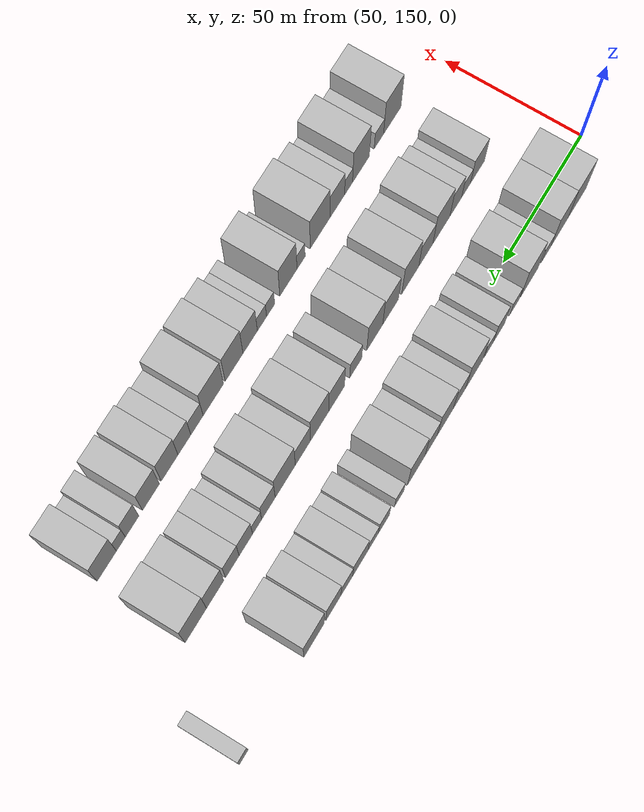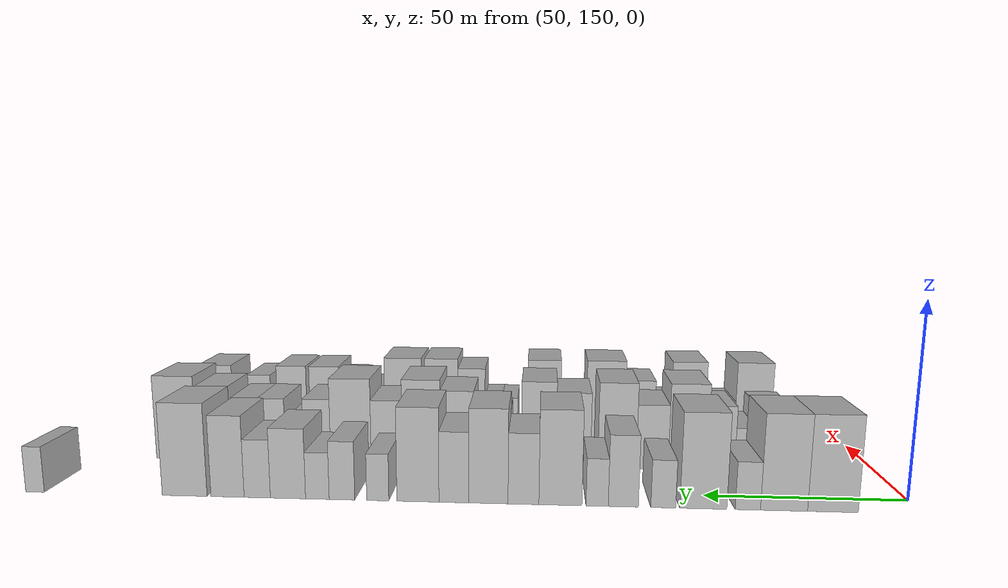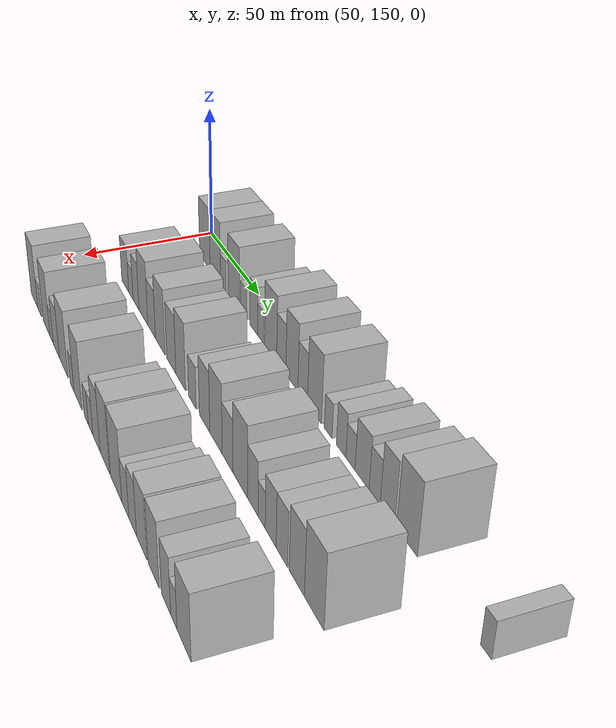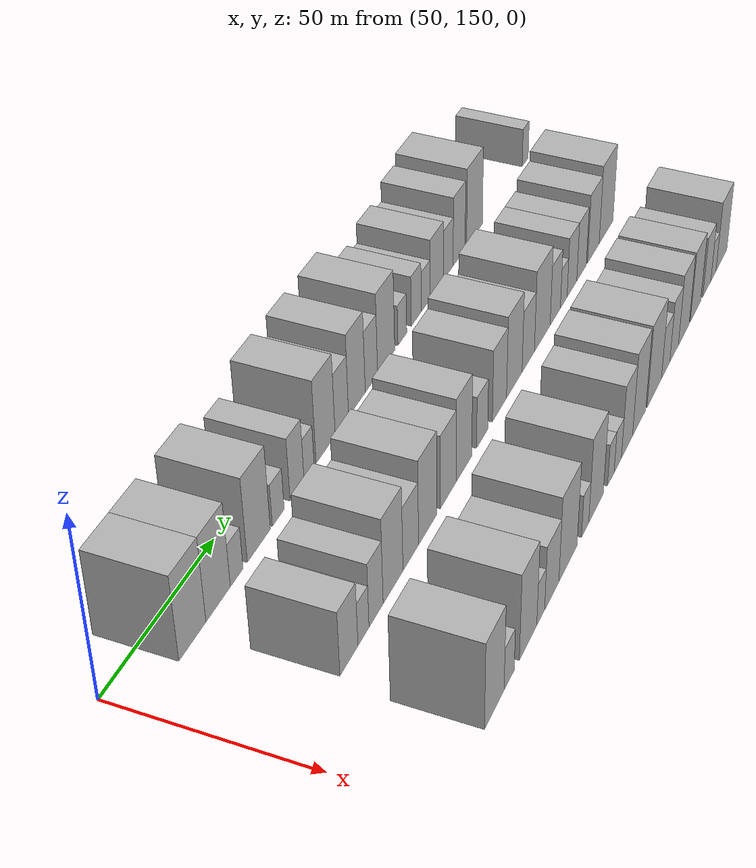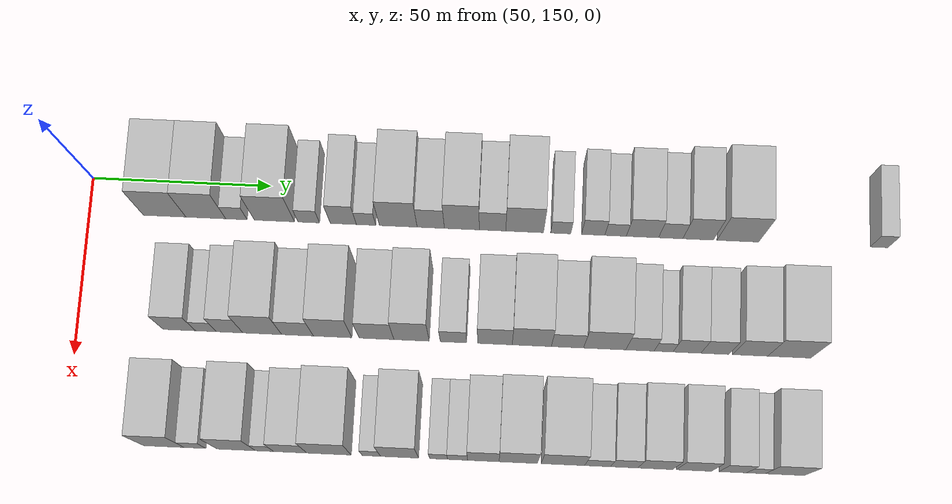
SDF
<sdf version="1.6">
 <world name="default">
  <model name="building_60">
   <static>1</static>
   <pose>50.0000 171.0451 0 0.000000 0.000000 0.000000</pose>
   <link name="link">
    <pose>0 0 12.00 0 0 0</pose>
    <collision name="collision"><geometry><box><size>20.0000 11.8751 24.0000</size></box></geometry></collision>
    <visual name="visual">
     <cast_shadows>0</cast_shadows>
     <geometry><box><size>20.0000 11.8751 24.0000</size></box></geometry>
     <material>
      <script>
       <uri>model://HANNAS_wall/materials/scripts</uri>
       <uri>model://HANNAS_wall/materials/textures</uri>
       <name>vrc/HANNAS_wall</name>
      </script>
     </material>
    </visual>
   </link>
  </model>
  <model name="building_61">
   <static>1</static>
   <pose>50.0000 182.5422 0 0.000000 0.000000 0.000000</pose>
   <link name="link">
    <pose>0 0 12.00 0 0 0</pose>
    <collision name="collision"><geometry><box><size>20.0000 11.1192 24.0000</size></box></geometry></collision>
    <visual name="visual">
     <cast_shadows>0</cast_shadows>
     <geometry><box><size>20.0000 11.1192 24.0000</size></box></geometry>
     <material>
      <script>
       <uri>model://HANNAS_wall/materials/scripts</uri>
       <uri>model://HANNAS_wall/materials/textures</uri>
       <name>vrc/HANNAS_wall</name>
      </script>
     </material>
    </visual>
   </link>
  </model>
  <model name="building_62">
   <static>1</static>
   <pose>50.0000 191.0909 0 0.000000 0.000000 0.000000</pose>
   <link name="link">
    <pose>0 0 6.00 0 0 0</pose>
    <collision name="collision"><geometry><box><size>20.0000 5.9782 12.0000</size></box></geometry></collision>
    <visual name="visual">
     <cast_shadows>0</cast_shadows>
     <geometry><box><size>20.0000 5.9782 12.0000</size></box></geometry>
     <material>
      <script>
       <uri>model://HANNAS_wall/materials/scripts</uri>
       <uri>model://HANNAS_wall/materials/textures</uri>
       <name>vrc/HANNAS_wall</name>
      </script>
     </material>
    </visual>
   </link>
  </model>
  <model name="building_63">
   <static>1</static>
   <pose>50.0000 201.6896 0 0.000000 0.000000 0.000000</pose>
   <link name="link">
    <pose>0 0 12.00 0 0 0</pose>
    <collision name="collision"><geometry><box><size>20.0000 11.2191 24.0000</size></box></geometry></collision>
    <visual name="visual">
     <cast_shadows>0</cast_shadows>
     <geometry><box><size>20.0000 11.2191 24.0000</size></box></geometry>
     <material>
      <script>
       <uri>model://HANNAS_wall/materials/scripts</uri>
       <uri>model://HANNAS_wall/materials/textures</uri>
       <name>vrc/HANNAS_wall</name>
      </script>
     </material>
    </visual>
   </link>
  </model>
  <model name="building_64">
   <static>1</static>
   <pose>50.0000 211.2845 0 0.000000 0.000000 0.000000</pose>
   <link name="link">
    <pose>0 0 6.00 0 0 0</pose>
    <collision name="collision"><geometry><box><size>20.0000 5.9709 12.0000</size></box></geometry></collision>
    <visual name="visual">
     <cast_shadows>0</cast_shadows>
     <geometry><box><size>20.0000 5.9709 12.0000</size></box></geometry>
     <material>
      <script>
       <uri>model://HANNAS_wall/materials/scripts</uri>
       <uri>model://HANNAS_wall/materials/textures</uri>
       <name>vrc/HANNAS_wall</name>
      </script>
     </material>
    </visual>
   </link>
  </model>
  <model name="building_65">
   <static>1</static>
   <pose>50.0000 220.9097 0 0.000000 0.000000 0.000000</pose>
   <link name="link">
    <pose>0 0 9.00 0 0 0</pose>
    <collision name="collision"><geometry><box><size>20.0000 7.2794 18.0000</size></box></geometry></collision>
    <visual name="visual">
     <cast_shadows>0</cast_shadows>
     <geometry><box><size>20.0000 7.2794 18.0000</size></box></geometry>
     <material>
      <script>
       <uri>model://HANNAS_wall/materials/scripts</uri>
       <uri>model://HANNAS_wall/materials/textures</uri>
       <name>vrc/HANNAS_wall</name>
      </script>
     </material>
    </visual>
   </link>
  </model>
  <model name="building_66">
   <static>1</static>
   <pose>50.0000 227.2464 0 0.000000 0.000000 0.000000</pose>
   <link name="link">
    <pose>0 0 6.00 0 0 0</pose>
    <collision name="collision"><geometry><box><size>20.0000 5.3942 12.0000</size></box></geometry></collision>
    <visual name="visual">
     <cast_shadows>0</cast_shadows>
     <geometry><box><size>20.0000 5.3942 12.0000</size></box></geometry>
     <material>
      <script>
       <uri>model://HANNAS_wall/materials/scripts</uri>
       <uri>model://HANNAS_wall/materials/textures</uri>
       <name>vrc/HANNAS_wall</name>
      </script>
     </material>
    </visual>
   </link>
  </model>
  <model name="building_67">
   <static>1</static>
   <pose>50.0000 236.1941 0 0.000000 0.000000 0.000000</pose>
   <link name="link">
    <pose>0 0 12.00 0 0 0</pose>
    <collision name="collision"><geometry><box><size>20.0000 10.5011 24.0000</size></box></geometry></collision>
    <visual name="visual">
     <cast_shadows>0</cast_shadows>
     <geometry><box><size>20.0000 10.5011 24.0000</size></box></geometry>
     <material>
      <script>
       <uri>model://HANNAS_wall/materials/scripts</uri>
       <uri>model://HANNAS_wall/materials/textures</uri>
       <name>vrc/HANNAS_wall</name>
      </script>
     </material>
    </visual>
   </link>
  </model>
  <model name="building_68">
   <static>1</static>
   <pose>50.0000 245.2332 0 0.000000 0.000000 0.000000</pose>
   <link name="link">
    <pose>0 0 9.00 0 0 0</pose>
    <collision name="collision"><geometry><box><size>20.0000 7.5772 18.0000</size></box></geometry></collision>
    <visual name="visual">
     <cast_shadows>0</cast_shadows>
     <geometry><box><size>20.0000 7.5772 18.0000</size></box></geometry>
     <material>
      <script>
       <uri>model://HANNAS_wall/materials/scripts</uri>
       <uri>model://HANNAS_wall/materials/textures</uri>
       <name>vrc/HANNAS_wall</name>
      </script>
     </material>
    </visual>
   </link>
  </model>
  <model name="building_69">
   <static>1</static>
   <pose>50.0000 253.8699 0 0.000000 0.000000 0.000000</pose>
   <link name="link">
    <pose>0 0 12.00 0 0 0</pose>
    <collision name="collision"><geometry><box><size>20.0000 9.6962 24.0000</size></box></geometry></collision>
    <visual name="visual">
     <cast_shadows>0</cast_shadows>
     <geometry><box><size>20.0000 9.6962 24.0000</size></box></geometry>
     <material>
      <script>
       <uri>model://HANNAS_wall/materials/scripts</uri>
       <uri>model://HANNAS_wall/materials/textures</uri>
       <name>vrc/HANNAS_wall</name>
      </script>
     </material>
    </visual>
   </link>
  </model>
  <model name="building_70">
   <static>1</static>
   <pose>50.0000 262.4035 0 0.000000 0.000000 0.000000</pose>
   <link name="link">
    <pose>0 0 9.00 0 0 0</pose>
    <collision name="collision"><geometry><box><size>20.0000 7.3710 18.0000</size></box></geometry></collision>
    <visual name="visual">
     <cast_shadows>0</cast_shadows>
     <geometry><box><size>20.0000 7.3710 18.0000</size></box></geometry>
     <material>
      <script>
       <uri>model://HANNAS_wall/materials/scripts</uri>
       <uri>model://HANNAS_wall/materials/textures</uri>
       <name>vrc/HANNAS_wall</name>
      </script>
     </material>
    </visual>
   </link>
  </model>
  <model name="building_71">
   <static>1</static>
   <pose>50.0000 271.3335 0 0.000000 0.000000 0.000000</pose>
   <link name="link">
    <pose>0 0 12.00 0 0 0</pose>
    <collision name="collision"><geometry><box><size>20.0000 10.4890 24.0000</size></box></geometry></collision>
    <visual name="visual">
     <cast_shadows>0</cast_shadows>
     <geometry><box><size>20.0000 10.4890 24.0000</size></box></geometry>
     <material>
      <script>
       <uri>model://HANNAS_wall/materials/scripts</uri>
       <uri>model://HANNAS_wall/materials/textures</uri>
       <name>vrc/HANNAS_wall</name>
      </script>
     </material>
    </visual>
   </link>
  </model>
  <model name="building_72">
   <static>1</static>
   <pose>50.0000 281.3617 0 0.000000 0.000000 0.000000</pose>
   <link name="link">
    <pose>0 0 6.00 0 0 0</pose>
    <collision name="collision"><geometry><box><size>20.0000 5.5674 12.0000</size></box></geometry></collision>
    <visual name="visual">
     <cast_shadows>0</cast_shadows>
     <geometry><box><size>20.0000 5.5674 12.0000</size></box></geometry>
     <material>
      <script>
       <uri>model://HANNAS_wall/materials/scripts</uri>
       <uri>model://HANNAS_wall/materials/textures</uri>
       <name>vrc/HANNAS_wall</name>
      </script>
     </material>
    </visual>
   </link>
  </model>
  <model name="building_73">
   <static>1</static>
   <pose>50.0000 290.3717 0 0.000000 0.000000 0.000000</pose>
   <link name="link">
    <pose>0 0 7.50 0 0 0</pose>
    <collision name="collision"><geometry><box><size>20.0000 6.4525 15.0000</size></box></geometry></collision>
    <visual name="visual">
     <cast_shadows>0</cast_shadows>
     <geometry><box><size>20.0000 6.4525 15.0000</size></box></geometry>
     <material>
      <script>
       <uri>model://HANNAS_wall/materials/scripts</uri>
       <uri>model://HANNAS_wall/materials/textures</uri>
       <name>vrc/HANNAS_wall</name>
      </script>
     </material>
    </visual>
   </link>
  </model>
  <model name="building_74">
   <static>1</static>
   <pose>50.0000 296.5858 0 0.000000 0.000000 0.000000</pose>
   <link name="link">
    <pose>0 0 6.00 0 0 0</pose>
    <collision name="collision"><geometry><box><size>20.0000 5.9758 12.0000</size></box></geometry></collision>
    <visual name="visual">
     <cast_shadows>0</cast_shadows>
     <geometry><box><size>20.0000 5.9758 12.0000</size></box></geometry>
     <material>
      <script>
       <uri>model://HANNAS_wall/materials/scripts</uri>
       <uri>model://HANNAS_wall/materials/textures</uri>
       <name>vrc/HANNAS_wall</name>
      </script>
     </material>
    </visual>
   </link>
  </model>
  <model name="building_75">
   <static>1</static>
   <pose>50.0000 304.0514 0 0.000000 0.000000 0.000000</pose>
   <link name="link">
    <pose>0 0 9.00 0 0 0</pose>
    <collision name="collision"><geometry><box><size>20.0000 8.9553 18.0000</size></box></geometry></collision>
    <visual name="visual">
     <cast_shadows>0</cast_shadows>
     <geometry><box><size>20.0000 8.9553 18.0000</size></box></geometry>
     <material>
      <script>
       <uri>model://HANNAS_wall/materials/scripts</uri>
       <uri>model://HANNAS_wall/materials/textures</uri>
       <name>vrc/HANNAS_wall</name>
      </script>
     </material>
    </visual>
   </link>
  </model>
  <model name="building_76">
   <static>1</static>
   <pose>50.0000 311.8852 0 0.000000 0.000000 0.000000</pose>
   <link name="link">
    <pose>0 0 7.50 0 0 0</pose>
    <collision name="collision"><geometry><box><size>20.0000 6.7124 15.0000</size></box></geometry></collision>
    <visual name="visual">
     <cast_shadows>0</cast_shadows>
     <geometry><box><size>20.0000 6.7124 15.0000</size></box></geometry>
     <material>
      <script>
       <uri>model://HANNAS_wall/materials/scripts</uri>
       <uri>model://HANNAS_wall/materials/textures</uri>
       <name>vrc/HANNAS_wall</name>
      </script>
     </material>
    </visual>
   </link>
  </model>
  <model name="building_77">
   <static>1</static>
   <pose>50.0000 319.4993 0 0.000000 0.000000 0.000000</pose>
   <link name="link">
    <pose>0 0 10.50 0 0 0</pose>
    <collision name="collision"><geometry><box><size>20.0000 8.5158 21.0000</size></box></geometry></collision>
    <visual name="visual">
     <cast_shadows>0</cast_shadows>
     <geometry><box><size>20.0000 8.5158 21.0000</size></box></geometry>
     <material>
      <script>
       <uri>model://HANNAS_wall/materials/scripts</uri>
       <uri>model://HANNAS_wall/materials/textures</uri>
       <name>vrc/HANNAS_wall</name>
      </script>
     </material>
    </visual>
   </link>
  </model>
  <model name="building_78">
   <static>1</static>
   <pose>50.0000 330.5434 0 0.000000 0.000000 0.000000</pose>
   <link name="link">
    <pose>0 0 12.00 0 0 0</pose>
    <collision name="collision"><geometry><box><size>20.0000 11.5724 24.0000</size></box></geometry></collision>
    <visual name="visual">
     <cast_shadows>0</cast_shadows>
     <geometry><box><size>20.0000 11.5724 24.0000</size></box></geometry>
     <material>
      <script>
       <uri>model://HANNAS_wall/materials/scripts</uri>
       <uri>model://HANNAS_wall/materials/textures</uri>
       <name>vrc/HANNAS_wall</name>
      </script>
     </material>
    </visual>
   </link>
  </model>
  <model name="building_79">
   <static>1</static>
   <pose>50.0000 369.6756 0 0.000000 0.000000 0.000000</pose>
   <link name="link">
    <pose>0 0 6.00 0 0 0</pose>
    <collision name="collision"><geometry><box><size>20.0000 4.8973 12.0000</size></box></geometry></collision>
    <visual name="visual">
     <cast_shadows>0</cast_shadows>
     <geometry><box><size>20.0000 4.8973 12.0000</size></box></geometry>
     <material>
      <script>
       <uri>model://HANNAS_wall/materials/scripts</uri>
       <uri>model://HANNAS_wall/materials/textures</uri>
       <name>vrc/HANNAS_wall</name>
      </script>
     </material>
    </visual>
   </link>
  </model>
  <model name="building_140">
   <static>1</static>
   <pose>82.0000 178.0437 0 0.000000 0.000000 0.000000</pose>
   <link name="link">
    <pose>0 0 9.00 0 0 0</pose>
    <collision name="collision"><geometry><box><size>20.0000 8.9101 18.0000</size></box></geometry></collision>
    <visual name="visual">
     <cast_shadows>0</cast_shadows>
     <geometry><box><size>20.0000 8.9101 18.0000</size></box></geometry>
     <material>
      <script>
       <uri>model://HANNAS_wall/materials/scripts</uri>
       <uri>model://HANNAS_wall/materials/textures</uri>
       <name>vrc/HANNAS_wall</name>
      </script>
     </material>
    </visual>
   </link>
  </model>
  <model name="building_141">
   <static>1</static>
   <pose>82.0000 185.3168 0 0.000000 0.000000 0.000000</pose>
   <link name="link">
    <pose>0 0 6.00 0 0 0</pose>
    <collision name="collision"><geometry><box><size>20.0000 5.6360 12.0000</size></box></geometry></collision>
    <visual name="visual">
     <cast_shadows>0</cast_shadows>
     <geometry><box><size>20.0000 5.6360 12.0000</size></box></geometry>
     <material>
      <script>
       <uri>model://HANNAS_wall/materials/scripts</uri>
       <uri>model://HANNAS_wall/materials/textures</uri>
       <name>vrc/HANNAS_wall</name>
      </script>
     </material>
    </visual>
   </link>
  </model>
  <model name="building_142">
   <static>1</static>
   <pose>82.0000 191.8093 0 0.000000 0.000000 0.000000</pose>
   <link name="link">
    <pose>0 0 9.00 0 0 0</pose>
    <collision name="collision"><geometry><box><size>20.0000 7.3491 18.0000</size></box></geometry></collision>
    <visual name="visual">
     <cast_shadows>0</cast_shadows>
     <geometry><box><size>20.0000 7.3491 18.0000</size></box></geometry>
     <material>
      <script>
       <uri>model://HANNAS_wall/materials/scripts</uri>
       <uri>model://HANNAS_wall/materials/textures</uri>
       <name>vrc/HANNAS_wall</name>
      </script>
     </material>
    </visual>
   </link>
  </model>
  <model name="building_143">
   <static>1</static>
   <pose>82.0000 200.8053 0 0.000000 0.000000 0.000000</pose>
   <link name="link">
    <pose>0 0 12.00 0 0 0</pose>
    <collision name="collision"><geometry><box><size>20.0000 10.6429 24.0000</size></box></geometry></collision>
    <visual name="visual">
     <cast_shadows>0</cast_shadows>
     <geometry><box><size>20.0000 10.6429 24.0000</size></box></geometry>
     <material>
      <script>
       <uri>model://HANNAS_wall/materials/scripts</uri>
       <uri>model://HANNAS_wall/materials/textures</uri>
       <name>vrc/HANNAS_wall</name>
      </script>
     </material>
    </visual>
   </link>
  </model>
  <model name="building_144">
   <static>1</static>
   <pose>82.0000 210.4749 0 0.000000 0.000000 0.000000</pose>
   <link name="link">
    <pose>0 0 9.00 0 0 0</pose>
    <collision name="collision"><geometry><box><size>20.0000 8.6963 18.0000</size></box></geometry></collision>
    <visual name="visual">
     <cast_shadows>0</cast_shadows>
     <geometry><box><size>20.0000 8.6963 18.0000</size></box></geometry>
     <material>
      <script>
       <uri>model://HANNAS_wall/materials/scripts</uri>
       <uri>model://HANNAS_wall/materials/textures</uri>
       <name>vrc/HANNAS_wall</name>
      </script>
     </material>
    </visual>
   </link>
  </model>
  <model name="building_145">
   <static>1</static>
   <pose>82.0000 220.0873 0 0.000000 0.000000 0.000000</pose>
   <link name="link">
    <pose>0 0 12.00 0 0 0</pose>
    <collision name="collision"><geometry><box><size>20.0000 10.5286 24.0000</size></box></geometry></collision>
    <visual name="visual">
     <cast_shadows>0</cast_shadows>
     <geometry><box><size>20.0000 10.5286 24.0000</size></box></geometry>
     <material>
      <script>
       <uri>model://HANNAS_wall/materials/scripts</uri>
       <uri>model://HANNAS_wall/materials/textures</uri>
       <name>vrc/HANNAS_wall</name>
      </script>
     </material>
    </visual>
   </link>
  </model>
  <model name="building_146">
   <static>1</static>
   <pose>82.0000 232.1012 0 0.000000 0.000000 0.000000</pose>
   <link name="link">
    <pose>0 0 10.50 0 0 0</pose>
    <collision name="collision"><geometry><box><size>20.0000 9.4990 21.0000</size></box></geometry></collision>
    <visual name="visual">
     <cast_shadows>0</cast_shadows>
     <geometry><box><size>20.0000 9.4990 21.0000</size></box></geometry>
     <material>
      <script>
       <uri>model://HANNAS_wall/materials/scripts</uri>
       <uri>model://HANNAS_wall/materials/textures</uri>
       <name>vrc/HANNAS_wall</name>
      </script>
     </material>
    </visual>
   </link>
  </model>
  <model name="building_147">
   <static>1</static>
   <pose>82.0000 241.6894 0 0.000000 0.000000 0.000000</pose>
   <link name="link">
    <pose>0 0 12.00 0 0 0</pose>
    <collision name="collision"><geometry><box><size>20.0000 9.6774 24.0000</size></box></geometry></collision>
    <visual name="visual">
     <cast_shadows>0</cast_shadows>
     <geometry><box><size>20.0000 9.6774 24.0000</size></box></geometry>
     <material>
      <script>
       <uri>model://HANNAS_wall/materials/scripts</uri>
       <uri>model://HANNAS_wall/materials/textures</uri>
       <name>vrc/HANNAS_wall</name>
      </script>
     </material>
    </visual>
   </link>
  </model>
  <model name="building_148">
   <static>1</static>
   <pose>82.0000 253.1378 0 0.000000 0.000000 0.000000</pose>
   <link name="link">
    <pose>0 0 7.50 0 0 0</pose>
    <collision name="collision"><geometry><box><size>20.0000 7.2195 15.0000</size></box></geometry></collision>
    <visual name="visual">
     <cast_shadows>0</cast_shadows>
     <geometry><box><size>20.0000 7.2195 15.0000</size></box></geometry>
     <material>
      <script>
       <uri>model://HANNAS_wall/materials/scripts</uri>
       <uri>model://HANNAS_wall/materials/textures</uri>
       <name>vrc/HANNAS_wall</name>
      </script>
     </material>
    </visual>
   </link>
  </model>
  <model name="building_149">
   <static>1</static>
   <pose>82.0000 264.4619 0 0.000000 0.000000 0.000000</pose>
   <link name="link">
    <pose>0 0 10.50 0 0 0</pose>
    <collision name="collision"><geometry><box><size>20.0000 9.4287 21.0000</size></box></geometry></collision>
    <visual name="visual">
     <cast_shadows>0</cast_shadows>
     <geometry><box><size>20.0000 9.4287 21.0000</size></box></geometry>
     <material>
      <script>
       <uri>model://HANNAS_wall/materials/scripts</uri>
       <uri>model://HANNAS_wall/materials/textures</uri>
       <name>vrc/HANNAS_wall</name>
      </script>
     </material>
    </visual>
   </link>
  </model>
  <model name="building_150">
   <static>1</static>
   <pose>82.0000 274.5289 0 0.000000 0.000000 0.000000</pose>
   <link name="link">
    <pose>0 0 12.00 0 0 0</pose>
    <collision name="collision"><geometry><box><size>20.0000 10.7053 24.0000</size></box></geometry></collision>
    <visual name="visual">
     <cast_shadows>0</cast_shadows>
     <geometry><box><size>20.0000 10.7053 24.0000</size></box></geometry>
     <material>
      <script>
       <uri>model://HANNAS_wall/materials/scripts</uri>
       <uri>model://HANNAS_wall/materials/textures</uri>
       <name>vrc/HANNAS_wall</name>
      </script>
     </material>
    </visual>
   </link>
  </model>
  <model name="building_151">
   <static>1</static>
   <pose>82.0000 284.2742 0 0.000000 0.000000 0.000000</pose>
   <link name="link">
    <pose>0 0 9.00 0 0 0</pose>
    <collision name="collision"><geometry><box><size>20.0000 8.7853 18.0000</size></box></geometry></collision>
    <visual name="visual">
     <cast_shadows>0</cast_shadows>
     <geometry><box><size>20.0000 8.7853 18.0000</size></box></geometry>
     <material>
      <script>
       <uri>model://HANNAS_wall/materials/scripts</uri>
       <uri>model://HANNAS_wall/materials/textures</uri>
       <name>vrc/HANNAS_wall</name>
      </script>
     </material>
    </visual>
   </link>
  </model>
  <model name="building_152">
   <static>1</static>
   <pose>82.0000 294.4346 0 0.000000 0.000000 0.000000</pose>
   <link name="link">
    <pose>0 0 12.00 0 0 0</pose>
    <collision name="collision"><geometry><box><size>20.0000 11.5355 24.0000</size></box></geometry></collision>
    <visual name="visual">
     <cast_shadows>0</cast_shadows>
     <geometry><box><size>20.0000 11.5355 24.0000</size></box></geometry>
     <material>
      <script>
       <uri>model://HANNAS_wall/materials/scripts</uri>
       <uri>model://HANNAS_wall/materials/textures</uri>
       <name>vrc/HANNAS_wall</name>
      </script>
     </material>
    </visual>
   </link>
  </model>
  <model name="building_153">
   <static>1</static>
   <pose>82.0000 304.0674 0 0.000000 0.000000 0.000000</pose>
   <link name="link">
    <pose>0 0 9.00 0 0 0</pose>
    <collision name="collision"><geometry><box><size>20.0000 7.7302 18.0000</size></box></geometry></collision>
    <visual name="visual">
     <cast_shadows>0</cast_shadows>
     <geometry><box><size>20.0000 7.7302 18.0000</size></box></geometry>
     <material>
      <script>
       <uri>model://HANNAS_wall/materials/scripts</uri>
       <uri>model://HANNAS_wall/materials/textures</uri>
       <name>vrc/HANNAS_wall</name>
      </script>
     </material>
    </visual>
   </link>
  </model>
  <model name="building_154">
   <static>1</static>
   <pose>82.0000 310.5184 0 0.000000 0.000000 0.000000</pose>
   <link name="link">
    <pose>0 0 6.00 0 0 0</pose>
    <collision name="collision"><geometry><box><size>20.0000 5.1719 12.0000</size></box></geometry></collision>
    <visual name="visual">
     <cast_shadows>0</cast_shadows>
     <geometry><box><size>20.0000 5.1719 12.0000</size></box></geometry>
     <material>
      <script>
       <uri>model://HANNAS_wall/materials/scripts</uri>
       <uri>model://HANNAS_wall/materials/textures</uri>
       <name>vrc/HANNAS_wall</name>
      </script>
     </material>
    </visual>
   </link>
  </model>
  <model name="building_155">
   <static>1</static>
   <pose>82.0000 316.9025 0 0.000000 0.000000 0.000000</pose>
   <link name="link">
    <pose>0 0 9.00 0 0 0</pose>
    <collision name="collision"><geometry><box><size>20.0000 7.5963 18.0000</size></box></geometry></collision>
    <visual name="visual">
     <cast_shadows>0</cast_shadows>
     <geometry><box><size>20.0000 7.5963 18.0000</size></box></geometry>
     <material>
      <script>
       <uri>model://HANNAS_wall/materials/scripts</uri>
       <uri>model://HANNAS_wall/materials/textures</uri>
       <name>vrc/HANNAS_wall</name>
      </script>
     </material>
    </visual>
   </link>
  </model>
  <model name="building_156">
   <static>1</static>
   <pose>82.0000 324.5213 0 0.000000 0.000000 0.000000</pose>
   <link name="link">
    <pose>0 0 9.00 0 0 0</pose>
    <collision name="collision"><geometry><box><size>20.0000 7.6413 18.0000</size></box></geometry></collision>
    <visual name="visual">
     <cast_shadows>0</cast_shadows>
     <geometry><box><size>20.0000 7.6413 18.0000</size></box></geometry>
     <material>
      <script>
       <uri>model://HANNAS_wall/materials/scripts</uri>
       <uri>model://HANNAS_wall/materials/textures</uri>
       <name>vrc/HANNAS_wall</name>
      </script>
     </material>
    </visual>
   </link>
  </model>
  <model name="building_157">
   <static>1</static>
   <pose>82.0000 334.1498 0 0.000000 0.000000 0.000000</pose>
   <link name="link">
    <pose>0 0 10.50 0 0 0</pose>
    <collision name="collision"><geometry><box><size>20.0000 9.6155 21.0000</size></box></geometry></collision>
    <visual name="visual">
     <cast_shadows>0</cast_shadows>
     <geometry><box><size>20.0000 9.6155 21.0000</size></box></geometry>
     <material>
      <script>
       <uri>model://HANNAS_wall/materials/scripts</uri>
       <uri>model://HANNAS_wall/materials/textures</uri>
       <name>vrc/HANNAS_wall</name>
      </script>
     </material>
    </visual>
   </link>
  </model>
  <model name="building_158">
   <static>1</static>
   <pose>82.0000 344.8273 0 0.000000 0.000000 0.000000</pose>
   <link name="link">
    <pose>0 0 12.00 0 0 0</pose>
    <collision name="collision"><geometry><box><size>20.0000 11.7396 24.0000</size></box></geometry></collision>
    <visual name="visual">
     <cast_shadows>0</cast_shadows>
     <geometry><box><size>20.0000 11.7396 24.0000</size></box></geometry>
     <material>
      <script>
       <uri>model://HANNAS_wall/materials/scripts</uri>
       <uri>model://HANNAS_wall/materials/textures</uri>
       <name>vrc/HANNAS_wall</name>
      </script>
     </material>
    </visual>
   </link>
  </model>
  <model name="building_218">
   <static>1</static>
   <pose>114.0000 176.7781 0 0.000000 0.000000 0.000000</pose>
   <link name="link">
    <pose>0 0 12.00 0 0 0</pose>
    <collision name="collision"><geometry><box><size>20.0000 10.8911 24.0000</size></box></geometry></collision>
    <visual name="visual">
     <cast_shadows>0</cast_shadows>
     <geometry><box><size>20.0000 10.8911 24.0000</size></box></geometry>
     <material>
      <script>
       <uri>model://HANNAS_wall/materials/scripts</uri>
       <uri>model://HANNAS_wall/materials/textures</uri>
       <name>vrc/HANNAS_wall</name>
      </script>
     </material>
    </visual>
   </link>
  </model>
  <model name="building_219">
   <static>1</static>
   <pose>114.0000 185.1483 0 0.000000 0.000000 0.000000</pose>
   <link name="link">
    <pose>0 0 6.00 0 0 0</pose>
    <collision name="collision"><geometry><box><size>20.0000 5.8493 12.0000</size></box></geometry></collision>
    <visual name="visual">
     <cast_shadows>0</cast_shadows>
     <geometry><box><size>20.0000 5.8493 12.0000</size></box></geometry>
     <material>
      <script>
       <uri>model://HANNAS_wall/materials/scripts</uri>
       <uri>model://HANNAS_wall/materials/textures</uri>
       <name>vrc/HANNAS_wall</name>
      </script>
     </material>
    </visual>
   </link>
  </model>
  <model name="building_220">
   <static>1</static>
   <pose>114.0000 196.2778 0 0.000000 0.000000 0.000000</pose>
   <link name="link">
    <pose>0 0 12.00 0 0 0</pose>
    <collision name="collision"><geometry><box><size>20.0000 10.4098 24.0000</size></box></geometry></collision>
    <visual name="visual">
     <cast_shadows>0</cast_shadows>
     <geometry><box><size>20.0000 10.4098 24.0000</size></box></geometry>
     <material>
      <script>
       <uri>model://HANNAS_wall/materials/scripts</uri>
       <uri>model://HANNAS_wall/materials/textures</uri>
       <name>vrc/HANNAS_wall</name>
      </script>
     </material>
    </visual>
   </link>
  </model>
  <model name="building_221">
   <static>1</static>
   <pose>114.0000 203.9071 0 0.000000 0.000000 0.000000</pose>
   <link name="link">
    <pose>0 0 6.00 0 0 0</pose>
    <collision name="collision"><geometry><box><size>20.0000 4.8489 12.0000</size></box></geometry></collision>
    <visual name="visual">
     <cast_shadows>0</cast_shadows>
     <geometry><box><size>20.0000 4.8489 12.0000</size></box></geometry>
     <material>
      <script>
       <uri>model://HANNAS_wall/materials/scripts</uri>
       <uri>model://HANNAS_wall/materials/textures</uri>
       <name>vrc/HANNAS_wall</name>
      </script>
     </material>
    </visual>
   </link>
  </model>
  <model name="building_222">
   <static>1</static>
   <pose>114.0000 210.8256 0 0.000000 0.000000 0.000000</pose>
   <link name="link">
    <pose>0 0 9.00 0 0 0</pose>
    <collision name="collision"><geometry><box><size>20.0000 8.9881 18.0000</size></box></geometry></collision>
    <visual name="visual">
     <cast_shadows>0</cast_shadows>
     <geometry><box><size>20.0000 8.9881 18.0000</size></box></geometry>
     <material>
      <script>
       <uri>model://HANNAS_wall/materials/scripts</uri>
       <uri>model://HANNAS_wall/materials/textures</uri>
       <name>vrc/HANNAS_wall</name>
      </script>
     </material>
    </visual>
   </link>
  </model>
  <model name="building_223">
   <static>1</static>
   <pose>114.0000 221.2740 0 0.000000 0.000000 0.000000</pose>
   <link name="link">
    <pose>0 0 12.00 0 0 0</pose>
    <collision name="collision"><geometry><box><size>20.0000 11.9086 24.0000</size></box></geometry></collision>
    <visual name="visual">
     <cast_shadows>0</cast_shadows>
     <geometry><box><size>20.0000 11.9086 24.0000</size></box></geometry>
     <material>
      <script>
       <uri>model://HANNAS_wall/materials/scripts</uri>
       <uri>model://HANNAS_wall/materials/textures</uri>
       <name>vrc/HANNAS_wall</name>
      </script>
     </material>
    </visual>
   </link>
  </model>
  <model name="building_224">
   <static>1</static>
   <pose>114.0000 232.6869 0 0.000000 0.000000 0.000000</pose>
   <link name="link">
    <pose>0 0 6.00 0 0 0</pose>
    <collision name="collision"><geometry><box><size>20.0000 4.9172 12.0000</size></box></geometry></collision>
    <visual name="visual">
     <cast_shadows>0</cast_shadows>
     <geometry><box><size>20.0000 4.9172 12.0000</size></box></geometry>
     <material>
      <script>
       <uri>model://HANNAS_wall/materials/scripts</uri>
       <uri>model://HANNAS_wall/materials/textures</uri>
       <name>vrc/HANNAS_wall</name>
      </script>
     </material>
    </visual>
   </link>
  </model>
  <model name="building_225">
   <static>1</static>
   <pose>114.0000 240.2539 0 0.000000 0.000000 0.000000</pose>
   <link name="link">
    <pose>0 0 12.00 0 0 0</pose>
    <collision name="collision"><geometry><box><size>20.0000 10.2170 24.0000</size></box></geometry></collision>
    <visual name="visual">
     <cast_shadows>0</cast_shadows>
     <geometry><box><size>20.0000 10.2170 24.0000</size></box></geometry>
     <material>
      <script>
       <uri>model://HANNAS_wall/materials/scripts</uri>
       <uri>model://HANNAS_wall/materials/textures</uri>
       <name>vrc/HANNAS_wall</name>
      </script>
     </material>
    </visual>
   </link>
  </model>
  <model name="building_226">
   <static>1</static>
   <pose>114.0000 250.7696 0 0.000000 0.000000 0.000000</pose>
   <link name="link">
    <pose>0 0 6.00 0 0 0</pose>
    <collision name="collision"><geometry><box><size>20.0000 4.8144 12.0000</size></box></geometry></collision>
    <visual name="visual">
     <cast_shadows>0</cast_shadows>
     <geometry><box><size>20.0000 4.8144 12.0000</size></box></geometry>
     <material>
      <script>
       <uri>model://HANNAS_wall/materials/scripts</uri>
       <uri>model://HANNAS_wall/materials/textures</uri>
       <name>vrc/HANNAS_wall</name>
      </script>
     </material>
    </visual>
   </link>
  </model>
  <model name="building_227">
   <static>1</static>
   <pose>114.0000 255.8586 0 0.000000 0.000000 0.000000</pose>
   <link name="link">
    <pose>0 0 6.00 0 0 0</pose>
    <collision name="collision"><geometry><box><size>20.0000 5.3634 12.0000</size></box></geometry></collision>
    <visual name="visual">
     <cast_shadows>0</cast_shadows>
     <geometry><box><size>20.0000 5.3634 12.0000</size></box></geometry>
     <material>
      <script>
       <uri>model://HANNAS_wall/materials/scripts</uri>
       <uri>model://HANNAS_wall/materials/textures</uri>
       <name>vrc/HANNAS_wall</name>
      </script>
     </material>
    </visual>
   </link>
  </model>
  <model name="building_228">
   <static>1</static>
   <pose>114.0000 262.7532 0 0.000000 0.000000 0.000000</pose>
   <link name="link">
    <pose>0 0 10.50 0 0 0</pose>
    <collision name="collision"><geometry><box><size>20.0000 8.4258 21.0000</size></box></geometry></collision>
    <visual name="visual">
     <cast_shadows>0</cast_shadows>
     <geometry><box><size>20.0000 8.4258 21.0000</size></box></geometry>
     <material>
      <script>
       <uri>model://HANNAS_wall/materials/scripts</uri>
       <uri>model://HANNAS_wall/materials/textures</uri>
       <name>vrc/HANNAS_wall</name>
      </script>
     </material>
    </visual>
   </link>
  </model>
  <model name="building_229">
   <static>1</static>
   <pose>114.0000 272.1184 0 0.000000 0.000000 0.000000</pose>
   <link name="link">
    <pose>0 0 12.00 0 0 0</pose>
    <collision name="collision"><geometry><box><size>20.0000 10.3046 24.0000</size></box></geometry></collision>
    <visual name="visual">
     <cast_shadows>0</cast_shadows>
     <geometry><box><size>20.0000 10.3046 24.0000</size></box></geometry>
     <material>
      <script>
       <uri>model://HANNAS_wall/materials/scripts</uri>
       <uri>model://HANNAS_wall/materials/textures</uri>
       <name>vrc/HANNAS_wall</name>
      </script>
     </material>
    </visual>
   </link>
  </model>
  <model name="building_230">
   <static>1</static>
   <pose>114.0000 284.0935 0 0.000000 0.000000 0.000000</pose>
   <link name="link">
    <pose>0 0 12.00 0 0 0</pose>
    <collision name="collision"><geometry><box><size>20.0000 11.6455 24.0000</size></box></geometry></collision>
    <visual name="visual">
     <cast_shadows>0</cast_shadows>
     <geometry><box><size>20.0000 11.6455 24.0000</size></box></geometry>
     <material>
      <script>
       <uri>model://HANNAS_wall/materials/scripts</uri>
       <uri>model://HANNAS_wall/materials/textures</uri>
       <name>vrc/HANNAS_wall</name>
      </script>
     </material>
    </visual>
   </link>
  </model>
  <model name="building_231">
   <static>1</static>
   <pose>114.0000 293.4077 0 0.000000 0.000000 0.000000</pose>
   <link name="link">
    <pose>0 0 7.50 0 0 0</pose>
    <collision name="collision"><geometry><box><size>20.0000 6.9829 15.0000</size></box></geometry></collision>
    <visual name="visual">
     <cast_shadows>0</cast_shadows>
     <geometry><box><size>20.0000 6.9829 15.0000</size></box></geometry>
     <material>
      <script>
       <uri>model://HANNAS_wall/materials/scripts</uri>
       <uri>model://HANNAS_wall/materials/textures</uri>
       <name>vrc/HANNAS_wall</name>
      </script>
     </material>
    </visual>
   </link>
  </model>
  <model name="building_232">
   <static>1</static>
   <pose>114.0000 300.5523 0 0.000000 0.000000 0.000000</pose>
   <link name="link">
    <pose>0 0 9.00 0 0 0</pose>
    <collision name="collision"><geometry><box><size>20.0000 7.3064 18.0000</size></box></geometry></collision>
    <visual name="visual">
     <cast_shadows>0</cast_shadows>
     <geometry><box><size>20.0000 7.3064 18.0000</size></box></geometry>
     <material>
      <script>
       <uri>model://HANNAS_wall/materials/scripts</uri>
       <uri>model://HANNAS_wall/materials/textures</uri>
       <name>vrc/HANNAS_wall</name>
      </script>
     </material>
    </visual>
   </link>
  </model>
  <model name="building_233">
   <static>1</static>
   <pose>114.0000 308.9140 0 0.000000 0.000000 0.000000</pose>
   <link name="link">
    <pose>0 0 10.50 0 0 0</pose>
    <collision name="collision"><geometry><box><size>20.0000 9.4169 21.0000</size></box></geometry></collision>
    <visual name="visual">
     <cast_shadows>0</cast_shadows>
     <geometry><box><size>20.0000 9.4169 21.0000</size></box></geometry>
     <material>
      <script>
       <uri>model://HANNAS_wall/materials/scripts</uri>
       <uri>model://HANNAS_wall/materials/textures</uri>
       <name>vrc/HANNAS_wall</name>
      </script>
     </material>
    </visual>
   </link>
  </model>
  <model name="building_234">
   <static>1</static>
   <pose>114.0000 319.3185 0 0.000000 0.000000 0.000000</pose>
   <link name="link">
    <pose>0 0 10.50 0 0 0</pose>
    <collision name="collision"><geometry><box><size>20.0000 9.3922 21.0000</size></box></geometry></collision>
    <visual name="visual">
     <cast_shadows>0</cast_shadows>
     <geometry><box><size>20.0000 9.3922 21.0000</size></box></geometry>
     <material>
      <script>
       <uri>model://HANNAS_wall/materials/scripts</uri>
       <uri>model://HANNAS_wall/materials/textures</uri>
       <name>vrc/HANNAS_wall</name>
      </script>
     </material>
    </visual>
   </link>
  </model>
  <model name="building_235">
   <static>1</static>
   <pose>114.0000 329.7148 0 0.000000 0.000000 0.000000</pose>
   <link name="link">
    <pose>0 0 9.00 0 0 0</pose>
    <collision name="collision"><geometry><box><size>20.0000 7.4005 18.0000</size></box></geometry></collision>
    <visual name="visual">
     <cast_shadows>0</cast_shadows>
     <geometry><box><size>20.0000 7.4005 18.0000</size></box></geometry>
     <material>
      <script>
       <uri>model://HANNAS_wall/materials/scripts</uri>
       <uri>model://HANNAS_wall/materials/textures</uri>
       <name>vrc/HANNAS_wall</name>
      </script>
     </material>
    </visual>
   </link>
  </model>
  <model name="building_236">
   <static>1</static>
   <pose>114.0000 335.8904 0 0.000000 0.000000 0.000000</pose>
   <link name="link">
    <pose>0 0 6.00 0 0 0</pose>
    <collision name="collision"><geometry><box><size>20.0000 4.9506 12.0000</size></box></geometry></collision>
    <visual name="visual">
     <cast_shadows>0</cast_shadows>
     <geometry><box><size>20.0000 4.9506 12.0000</size></box></geometry>
     <material>
      <script>
       <uri>model://HANNAS_wall/materials/scripts</uri>
       <uri>model://HANNAS_wall/materials/textures</uri>
       <name>vrc/HANNAS_wall</name>
      </script>
     </material>
    </visual>
   </link>
  </model>
  <model name="building_237">
   <static>1</static>
   <pose>114.0000 343.6112 0 0.000000 0.000000 0.000000</pose>
   <link name="link">
    <pose>0 0 10.50 0 0 0</pose>
    <collision name="collision"><geometry><box><size>20.0000 10.4911 21.0000</size></box></geometry></collision>
    <visual name="visual">
     <cast_shadows>0</cast_shadows>
     <geometry><box><size>20.0000 10.4911 21.0000</size></box></geometry>
     <material>
      <script>
       <uri>model://HANNAS_wall/materials/scripts</uri>
       <uri>model://HANNAS_wall/materials/textures</uri>
       <name>vrc/HANNAS_wall</name>
      </script>
     </material>
    </visual>
   </link>
  </model>
 </world>
</sdf>
